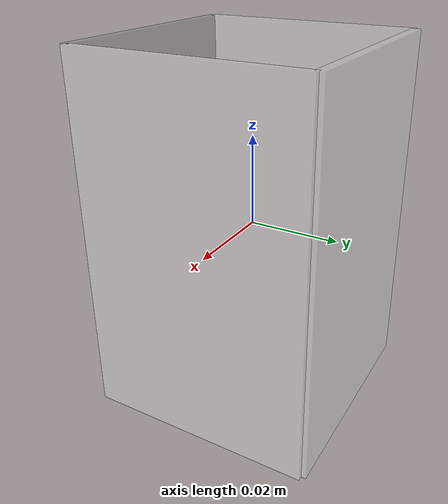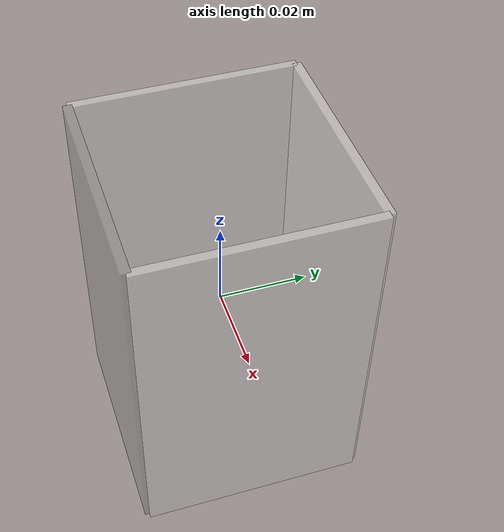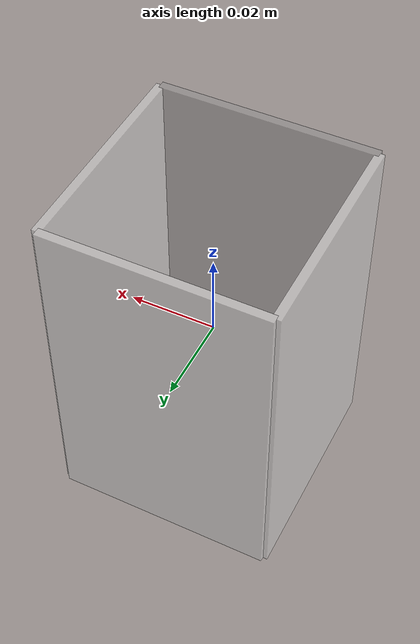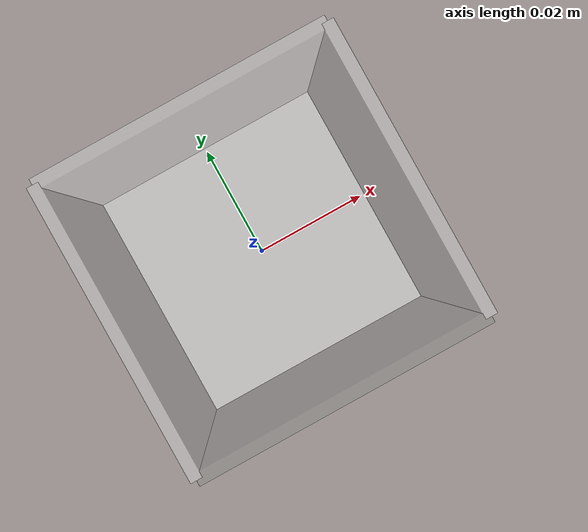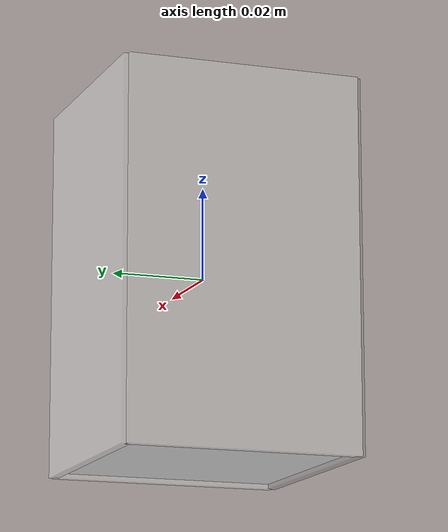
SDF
<sdf version='1.0'>
  <model name='cup_hollow'>
    <link name='base'>
      <pose frame=''>0 0 0 0 -0 0</pose>
      <inertial>
        <pose frame=''>0 0 0 0 -0 0</pose>
        <mass>6.0</mass>
        <inertia>
          <ixx>5.0</ixx>
          <ixy>5.0</ixy>
          <ixz>5.0</ixz>
          <iyx>5.0</iyx>
          <iyy>5.0</iyy>
          <iyz>5.0</iyz>
          <izx>5.0</izx>
          <izy>5.0</izy>
          <izz>5.0</izz>
        </inertia>
      </inertial>
      <collision name='base_link_collision'>
       <pose frame=''>0 0 -0.038 0 0 0</pose>
        <geometry>
          <box>
            <size>0.05 0.05 0.002</size>
          </box>
        </geometry>
        <surface>
          <friction>
            <ode>
              <mu>150.0</mu>
              <mu2>150.0</mu2>
            </ode>
          </friction>
        </surface>
      </collision>
      <visual name='base_link_visual'>
        <transparency>0.2</transparency>
        <pose frame=''>0 0 -0.038 0 0 0</pose>
        <geometry>
          <box>
            <size>0.05 0.05 0.002</size>
          </box>
        </geometry>
        <material>
          <script>
            <name>Gazebo/White</name>
            <uri>file://media/materials/scripts/gazebo.material</uri>
          </script>
        </material>
      </visual>
    </link>

    <link name='back_wall'>
      <pose frame=''>0 0 0 0 -0 0</pose>
      <inertial>
        <pose frame=''>0 0 0 0 -0 0</pose>
        <mass>6.0</mass>
        <inertia>
          <ixx>5.0</ixx>
          <ixy>5.0</ixy>
          <ixz>5.0</ixz>
          <iyx>5.0</iyx>
          <iyy>5.0</iyy>
          <iyz>5.0</iyz>
          <izx>5.0</izx>
          <izy>5.0</izy>
          <izz>5.0</izz>
        </inertia>
      </inertial>
      <collision name='back_wall_collision'>
        <pose frame=''>-0.025 0 0 0 0 0</pose>
        <geometry>
          <box>
           <size>0.002 0.05 0.08</size>
          </box>
        </geometry>
        <surface>
          <friction>
            <ode>
              <mu>150.0</mu>
              <mu2>150.0</mu2>
            </ode>
          </friction>
        </surface>
      </collision>
      <visual name='back_wall_visual'>
        <transparency>0.5</transparency>
        <pose frame=''>-0.025 0 0 0 0 0</pose>
        <geometry>
          <box>
            <size>0.002 0.05 0.08</size>
          </box>
        </geometry>
        <material>
          <script>
            <name>Gazebo/White</name>
            <uri>file://media/materials/scripts/gazebo.material</uri>
          </script>
        </material>
      </visual>
    </link>

    <joint name="back_wall_to_base" type="fixed">
      <parent link="base"/>
      <child link="back_wall"/>
    </joint>

    <link name='front_wall'>
      <pose frame=''>0 0 0 0 -0 0</pose>
      <inertial>
        <pose frame=''>0 0 0 0 -0 0</pose>
        <mass>6.0</mass>
        <inertia>
          <ixx>5.0</ixx>
          <ixy>5.0</ixy>
          <ixz>5.0</ixz>
          <iyx>5.0</iyx>
          <iyy>5.0</iyy>
          <iyz>5.0</iyz>
          <izx>5.0</izx>
          <izy>5.0</izy>
          <izz>5.0</izz>
        </inertia>
      </inertial>
      <collision name='front_wall_collision'>
      <pose frame=''>0.025 0 0 0 0 0</pose>
        <geometry>
          <box>
            <size>0.002 0.05 0.08</size>
          </box>
        </geometry>
        <surface>
          <friction>
            <ode>
              <mu>150.0</mu>
              <mu2>150.0</mu2>
            </ode>
          </friction>
        </surface>
      </collision>
      <visual name='front_wall_visual'>
        <transparency>0.5</transparency>
        <pose frame=''>0.025 0 0 0 0 0</pose>
        <geometry>
          <box>
            <size>0.002 0.05 0.08</size>
          </box>
        </geometry>
        <material>
          <script>
            <name>Gazebo/White</name>
            <uri>file://media/materials/scripts/gazebo.material</uri>
          </script>
        </material>
      </visual>
    </link>

    <joint name="front_wall_to_base" type="fixed">
      <parent link="base"/>
      <child link="front_wall"/>
    </joint>

    <link name='left_wall'>
      <pose frame=''>0 0 0 0 0 0</pose>
      <inertial>
        <pose frame=''>0 0 0 0 0 0</pose>
        <mass>6.0</mass>
        <inertia>
          <ixx>5.0</ixx>
          <ixy>5.0</ixy>
          <ixz>5.0</ixz>
          <iyx>5.0</iyx>
          <iyy>5.0</iyy>
          <iyz>5.0</iyz>
          <izx>5.0</izx>
          <izy>5.0</izy>
          <izz>5.0</izz>
        </inertia>
      </inertial>
      <collision name='left_wall_collision'>
       <pose frame=''>0.0 0.025 0 0 0 0</pose>
        <geometry>
          <box>
            <size>0.05 0.002 0.08</size>
          </box>
        </geometry>
        <surface>
          <friction>
            <ode>
              <mu>150.0</mu>
              <mu2>150.0</mu2>
            </ode>
          </friction>
        </surface>
      </collision>
      <visual name='left_wall_visual'>
        <transparency>0.5</transparency>
        <pose frame=''>0.0 0.025 0 0 0 0</pose>
        <geometry>
          <box>
            <size>0.05 0.002 0.08</size>
          </box>
        </geometry>
        <material>
          <script>
            <name>Gazebo/White</name>
            <uri>file://media/materials/scripts/gazebo.material</uri>
          </script>
        </material>
      </visual>
    </link>

    <joint name="left_wall_to_base" type="fixed">
      <parent link="base"/>
      <child link="left_wall"/>
    </joint>

   <link name='right_wall'>
      <pose frame=''>0 0 0 0 -0 0</pose>
      <inertial>
        <pose frame=''>0 0 0 0 -0 0</pose>
        <mass>6.0</mass>
        <inertia>
          <ixx>5.0</ixx>
          <ixy>5.0</ixy>
          <ixz>5.0</ixz>
          <iyx>5.0</iyx>
          <iyy>5.0</iyy>
          <iyz>5.0</iyz>
          <izx>5.0</izx>
          <izy>5.0</izy>
          <izz>5.0</izz>
        </inertia>
      </inertial>
      <collision name='right_wall_collision'>
       <pose frame=''>0.0 -0.025 0 0 0 0</pose>
        <geometry>
          <box>
             <size>0.05 0.002 0.08</size>
          </box>
        </geometry>
        <surface>
          <friction>
            <ode>
              <mu>150.0</mu>
              <mu2>150.0</mu2>
            </ode>
          </friction>
        </surface>
      </collision>
      <visual name='right_wall_visual'>
        <transparency>0.5</transparency>
        <pose frame=''>0.0 -0.025 0 0 0 0</pose>
        <geometry>
          <box>
            <size>0.05 0.002 0.08</size>
          </box>
        </geometry>
        <material>
          <script>
            <name>Gazebo/GreyTransparent</name>
            <uri>file://media/materials/scripts/gazebo.material</uri>
          </script>
        </material>
      </visual>
    </link>

    <joint name="right_wall_to_base" type="fixed">
      <parent link="base"/>
      <child link="right_wall"/>
    </joint>

  </model>
</sdf>
